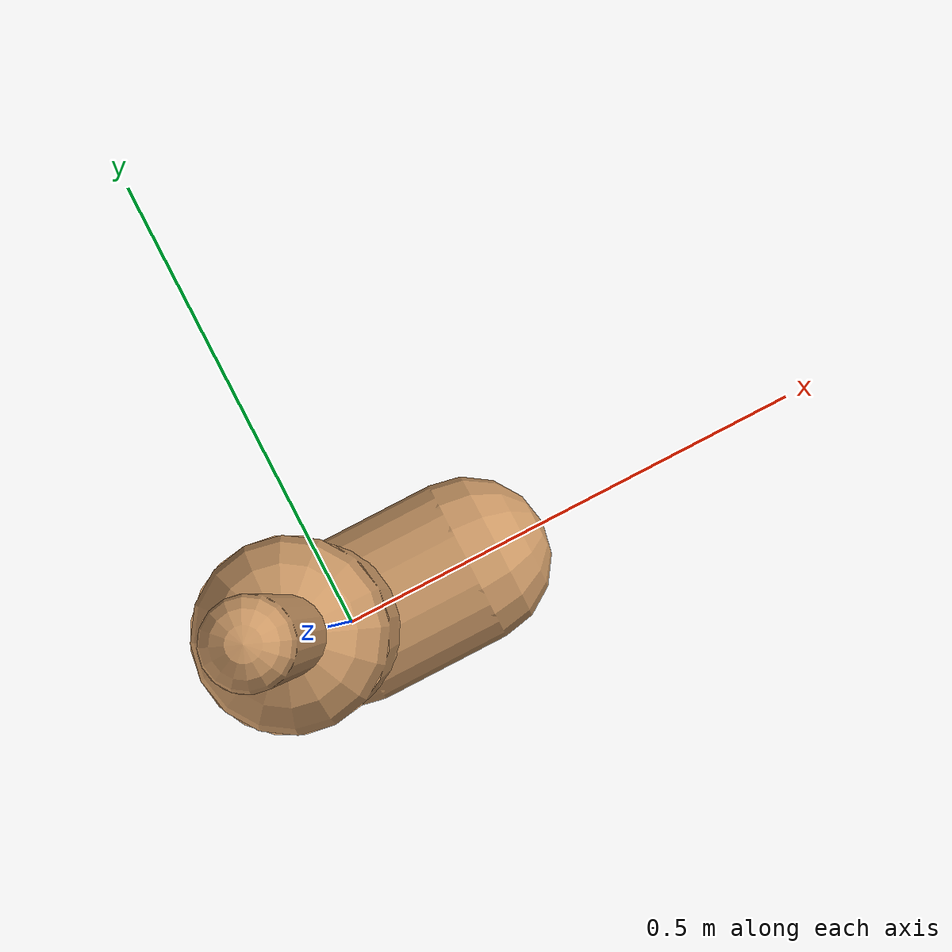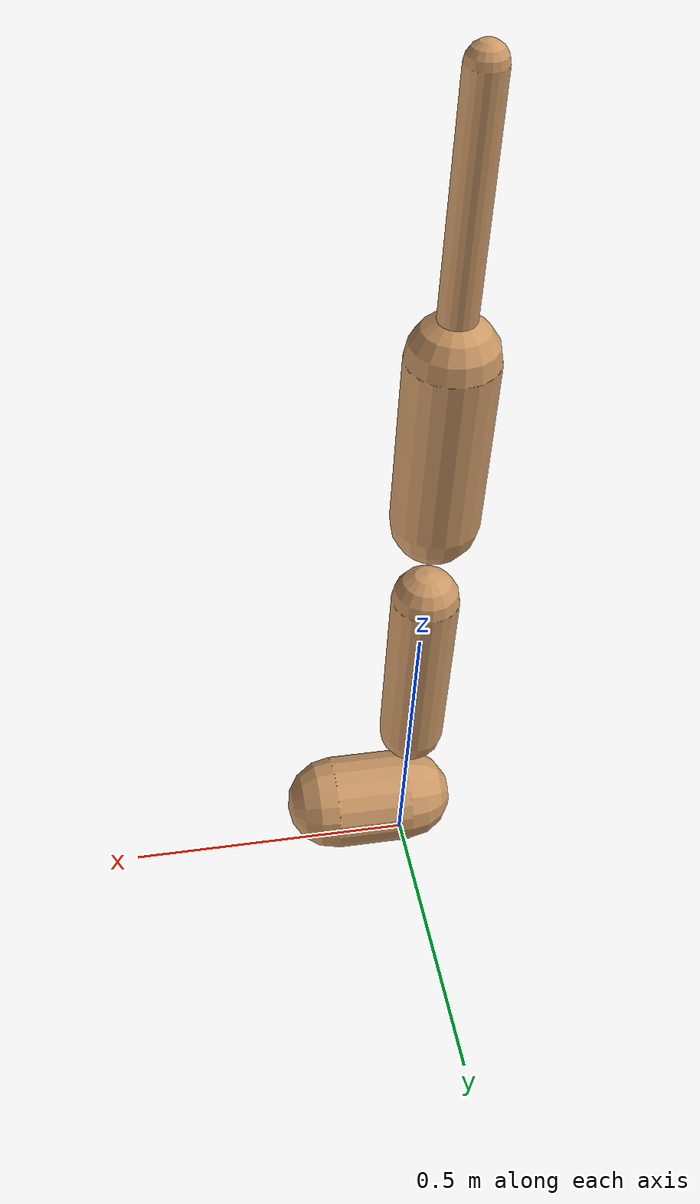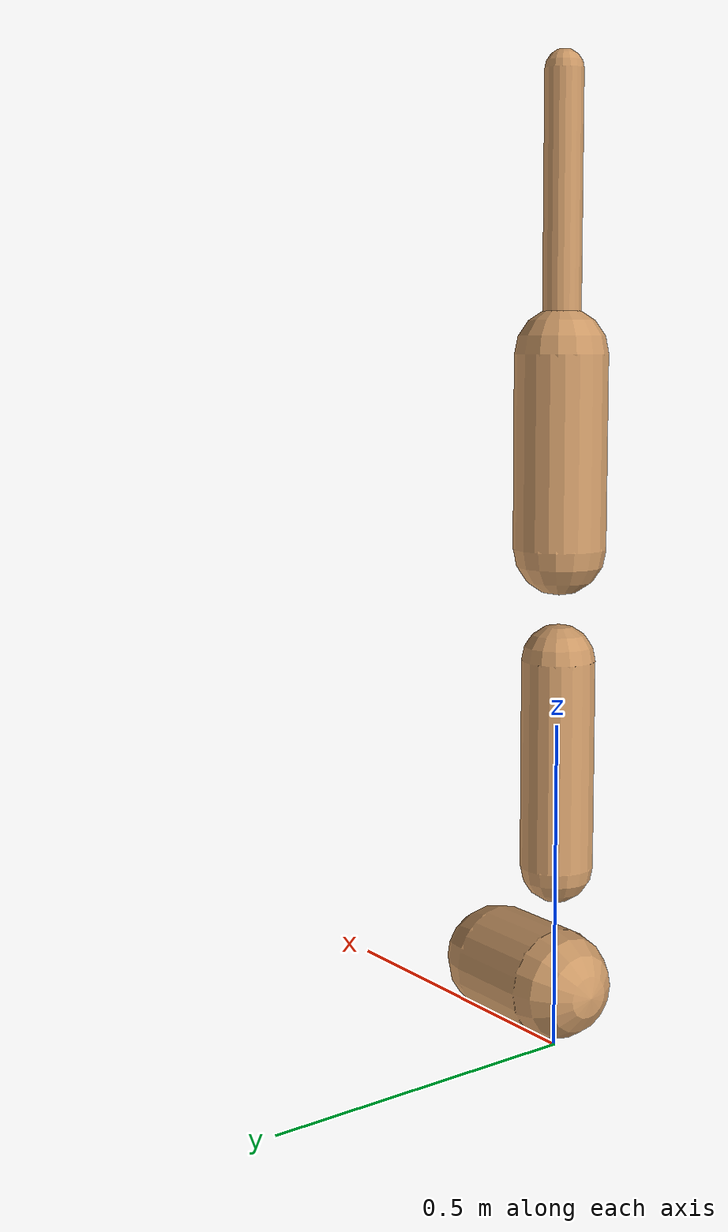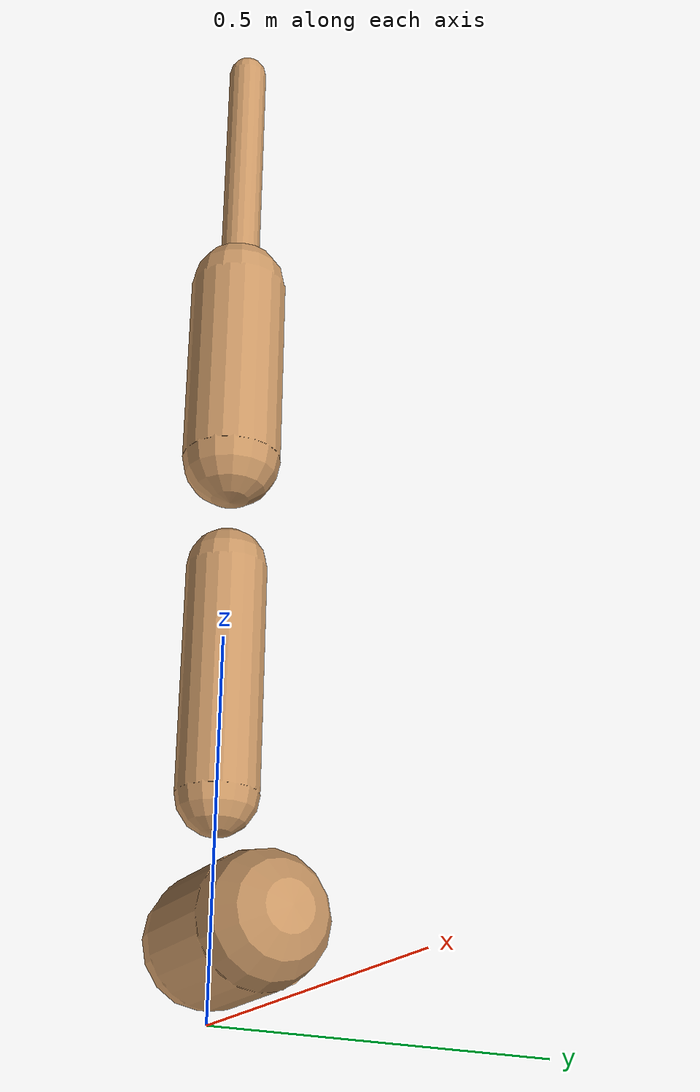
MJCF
<mujoco model="walker2d">
  <compiler angle="degree" coordinate="global" inertiafromgeom="true" />
  <default>
    <joint armature="0.01" damping=".1" limited="true" />
    <geom conaffinity="0" condim="3" contype="1" density="1000" friction="0.8 .1 .1" rgba="0.8 0.6 .4 1" />
  </default>
  <option integrator="RK4" timestep="0.002" />
  <worldbody>

    <body name="torso" pos="0 0 -0.3517586852142043">
      <joint armature="0" axis="1 0 0" damping="0" limited="false" name="ignorex" pos="0 0 0" stiffness="0" type="slide" />
      <joint armature="0" axis="0 0 1" damping="0" limited="false" name="ignorez" pos="0 0 0" ref="1.25" stiffness="0" type="slide" />
      <joint armature="0" axis="0 1 0" damping="0" limited="false" name="ignorey" pos="0 0 0" stiffness="0" type="hinge" />
      <geom fromto="0 0 1.45 0 0 1.05" name="torso_geom" size="0.028168346778226206" type="capsule" />
      <body name="thigh">
        <joint axis="0 -1 0" name="thigh_joint" pos="0 0 1.05" range="-150 0" type="hinge" />
        <geom fromto="0.0 0.0 1.05 0.0 0.0 0.7666225351014652" name="thigh_geom" size="0.06854679883159222" type="capsule" />
        <body name="leg" pos="0.0 0.0 0.16662253510146519">
          <joint axis="0 -1 0" name="leg_joint" pos="0 0 0.6" range="-150 0" type="hinge" />
          <geom fromto="0.0 0.0 0.6 0.0 0.0 0.2851361501127391" name="leg_geom" size="0.054837439065273774" type="capsule" />
          <body name="foot" pos="0.0 0.0 0.18513615011273907">
            <joint axis="0 -1 0" name="foot_joint" pos="0 0 0.1" range="-45 45" type="hinge" />
            <geom fromto="0.0 0.0 0.1 0.13315231543436098 0.0 0.1" name="foot_geom" size="0.08331759269512702" type="capsule" />
          </body>
        </body>
      </body>

      <body name="thigh_left">
        <joint axis="0 -1 0" name="thigh_left_joint" pos="0 0 1.05" range="-150 0" type="hinge" />
        <geom fromto="0.0 0.0 1.05 0.0 0.0 0.7666225351014652" name="thigh_left_geom" rgba=".7 .3 .6 1" size="0.06854679883159222" type="capsule" />
        <body name="leg_left" pos="0.0 0.0 0.16662253510146519">
          <joint axis="0 -1 0" name="leg_left_joint" pos="0 0 0.6" range="-150 0" type="hinge" />
          <geom fromto="0.0 0.0 0.6 0.0 0.0 0.2851361501127391" name="leg_left_geom" rgba=".7 .3 .6 1" size="0.054837439065273774" type="capsule" />
          <body name="foot_left" pos="0.0 0.0 0.18513615011273907">
            <joint axis="0 -1 0" name="foot_left_joint" pos="0 0 0.1" range="-45 45" type="hinge" />
            <geom fromto="0.0 0.0 0.1 0.13315231543436098 0.0 0.1" name="foot_left_geom" rgba=".7 .3 .6 1" size="0.08331759269512702" type="capsule" />
          </body>
        </body>
      </body>
    </body>
  </worldbody>
  <actuator>

    <motor ctrllimited="true" ctrlrange="-1.0 1.0" gear="100" joint="thigh_joint" />
    <motor ctrllimited="true" ctrlrange="-1.0 1.0" gear="100" joint="leg_joint" />
    <motor ctrllimited="true" ctrlrange="-1.0 1.0" gear="100" joint="foot_joint" />
    <motor ctrllimited="true" ctrlrange="-1.0 1.0" gear="100" joint="thigh_left_joint" />
    <motor ctrllimited="true" ctrlrange="-1.0 1.0" gear="100" joint="leg_left_joint" />
    <motor ctrllimited="true" ctrlrange="-1.0 1.0" gear="100" joint="foot_left_joint" />

  </actuator>
</mujoco>
